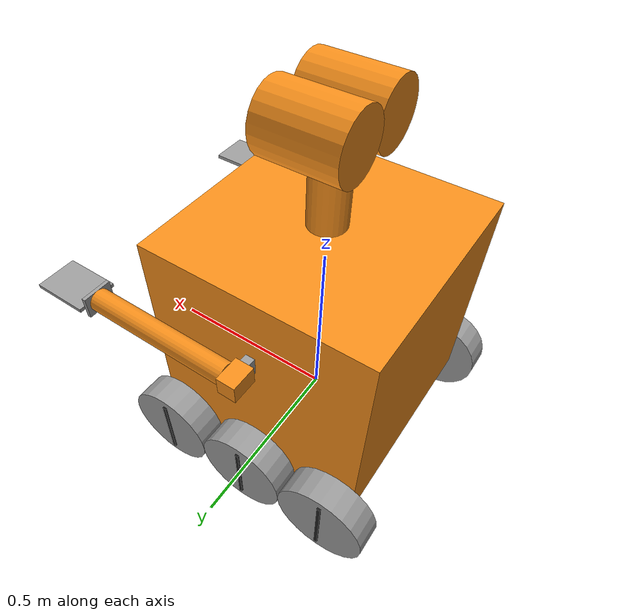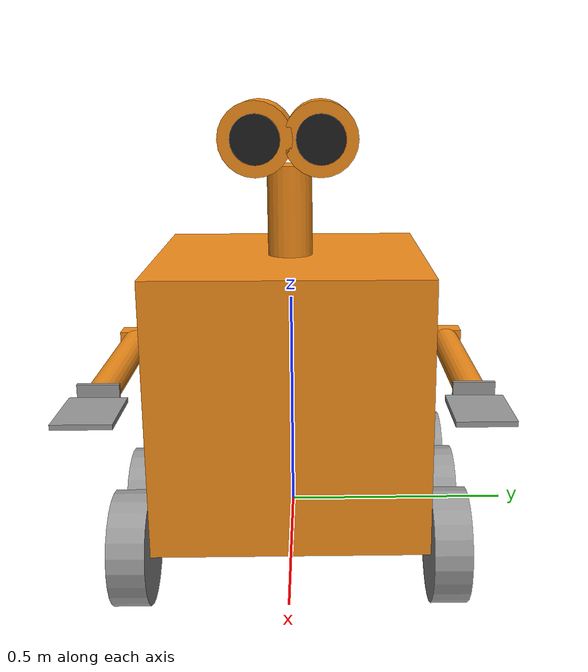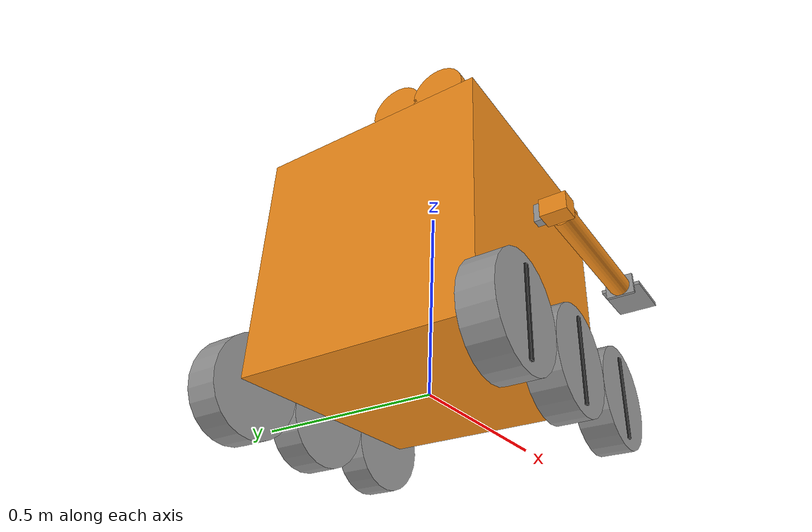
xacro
<?xml version="1.0" encoding="utf-8"?>
<robot name="my_bot" xmlns:xacro="http://www.ros.org/wiki/xacro">
    <xacro:include filename="$(find mybot_description)/urdf/materials.xacro" />
    <xacro:include filename="$(find mybot_description)/urdf/my_bot.gazebo" />
    <xacro:include filename="$(find mybot_description)/urdf/wheel_macro.xacro" />
    <xacro:include filename="$(find mybot_description)/urdf/hand_macro.xacro" />
    <xacro:include filename="$(find mybot_description)/urdf/eye_macro.xacro" />
    <xacro:include filename="$(find mybot_description)/urdf/transmission.xacro" />

    <xacro:property name="base_side" value="0.6"/>
    <xacro:property name="arm_pos" value="${base_side*2/3}"/>

    <xacro:property name="wheel_rad" value="0.125"/>
    <xacro:property name="wheel_len" value="0.08"/>

    <xacro:property name="shoulder_l" value="0.025"/>
    <xacro:property name="shoulder_w" value="0.02"/>
    <xacro:property name="shoulder_h" value="0.05"/>

    <xacro:property name="shoulder_forward_l" value="0.05"/>
    <xacro:property name="shoulder_forward_w" value="0.07"/>
    <xacro:property name="shoulder_forward_h" value="0.05"/>

    <xacro:property name="upper_arm_rad" value="0.03"/>
    <xacro:property name="upper_arm_len" value="0.4"/>

    <xacro:property name="arm_center_l" value="0.06"/>
    <xacro:property name="arm_center_w" value="0.08"/>
    <xacro:property name="arm_center_h" value="0.01"/>

    <xacro:property name="hand_l" value="0.11"/>
    <xacro:property name="hand_w" value="0.01"/>
    <xacro:property name="hand_h" value="0.15"/>

    <xacro:property name="ocular_rad" value="0.08"/>
    <xacro:property name="ocular_len" value="0.2"/>

    <xacro:property name="neck_rad" value="0.05"/>
    <xacro:property name="neck_len" value="0.2"/>

    <!-- * * * Link Definitions * * * -->

    <link name="base_link">
        <visual>
            <origin xyz="0 0 ${base_side/2}" rpy="0 0 0"/>
            <geometry>
                <box size="${base_side} ${base_side} ${base_side}"/>
            </geometry>
        </visual>
        <collision>
            <geometry>
                <box size="${base_side} ${base_side} ${base_side}"/>
            </geometry>
        </collision>
        <inertial>
            <mass value="2"/>
            <inertia ixx="1" ixy="0.0" ixz="0.0" iyy="1" iyz="0.0" izz="1"/>
        </inertial>
    </link>

    <xacro:link_wheel name="wheel_1_left" wheel_rad="${wheel_rad}" wheel_len="${wheel_len}" />
    <xacro:link_wheel_line name="wheel_1_left_line" wheel_rad="${wheel_rad}" />

    <xacro:link_wheel name="wheel_2_left" wheel_rad="${wheel_rad}" wheel_len="${wheel_len}" />
    <xacro:link_wheel_line name="wheel_2_left_line" wheel_rad="${wheel_rad}" />

    <xacro:link_wheel name="wheel_3_left" wheel_rad="${wheel_rad}" wheel_len="${wheel_len}" />
    <xacro:link_wheel_line name="wheel_3_left_line" wheel_rad="${wheel_rad}" />

    <xacro:link_wheel name="wheel_1_right" wheel_rad="${wheel_rad}" wheel_len="${wheel_len}" />
    <xacro:link_wheel_line name="wheel_1_right_line" wheel_rad="${wheel_rad}" />

    <xacro:link_wheel name="wheel_2_right" wheel_rad="${wheel_rad}" wheel_len="${wheel_len}" />
    <xacro:link_wheel_line name="wheel_2_right_line" wheel_rad="${wheel_rad}" />

    <xacro:link_wheel name="wheel_3_right" wheel_rad="${wheel_rad}" wheel_len="${wheel_len}" />
    <xacro:link_wheel_line name="wheel_3_right_line" wheel_rad="${wheel_rad}" />

    <xacro:link_shoulder name="left_shoulder_link" shoulder_l="${shoulder_l}" shoulder_w="${shoulder_w}" shoulder_h="${shoulder_h}" />
    <xacro:link_shoulder_forward name="left_shoulder_forward_link" shoulder_forward_l="${shoulder_forward_l}" shoulder_forward_w="${shoulder_forward_w}" shoulder_forward_h="${shoulder_forward_h}" />
    <xacro:link_upper_arm name="left_upper_arm_link" upper_arm_rad="${upper_arm_rad}" upper_arm_len="${upper_arm_len}" />
    <xacro:link_arm_center name="left_center_link" arm_center_l="${arm_center_l}" arm_center_w="${arm_center_w}" arm_center_h="${arm_center_h}" />
    <xacro:link_hand name="left_hand_link" hand_l="${hand_l}" hand_w="${hand_w}" hand_h="${hand_h}" />

    <xacro:link_shoulder name="right_shoulder_link" shoulder_l="${shoulder_l}" shoulder_w="${shoulder_w}" shoulder_h="${shoulder_h}" />
    <xacro:link_shoulder_forward name="right_shoulder_forward_link" shoulder_forward_l="${shoulder_forward_l}" shoulder_forward_w="${shoulder_forward_w}" shoulder_forward_h="${shoulder_forward_h}" />
    <xacro:link_upper_arm name="right_upper_arm_link" upper_arm_rad="${upper_arm_rad}" upper_arm_len="${upper_arm_len}" />
    <xacro:link_arm_center name="right_center_link" arm_center_l="${arm_center_l}" arm_center_w="${arm_center_w}" arm_center_h="${arm_center_h}" />
    <xacro:link_hand name="right_hand_link" hand_l="${hand_l}" hand_w="${hand_w}" hand_h="${hand_h}" />

    <link name="neck_link">
        <visual>
            <origin xyz="0 0 0" rpy="0 0 0"/>
            <geometry>
                <cylinder radius="${neck_rad}" length="${neck_len}"/>
            </geometry>
        </visual>
        <collision>
            <geometry>
                <cylinder radius="${neck_rad}" length="${neck_len}"/>
            </geometry>
        </collision>
        <inertial>
            <mass value="0.2"/>
            <inertia ixx="1" ixy="0.0" ixz="0.0" iyy="1" iyz="0.0" izz="1"/>
        </inertial>
    </link>

    <xacro:link_ocular name="left_ocular_link" ocular_rad="${ocular_rad}" ocular_len="${ocular_len}" />
    <xacro:link_eye name="left_eye_link" ocular_rad="${ocular_rad}" />

    <xacro:link_ocular name="right_ocular_link" ocular_rad="${ocular_rad}" ocular_len="${ocular_len}" />
    <xacro:link_eye name="right_eye_link" ocular_rad="${ocular_rad}" />

    <!-- * * * Joint Definitions * * * -->

    <xacro:joint_wheel name="wheel_1_left_joint" child="wheel_1_left" origin_xyz="${wheel_rad*2} ${base_side/2 + wheel_len/2} 0" />
    <xacro:joint_wheel_line name="wheel_1_left_line_joint" parent="wheel_1_left" child="wheel_1_left_line" origin_xyz="0 ${wheel_len/2} 0" />

    <xacro:joint_wheel name="wheel_2_left_joint" child="wheel_2_left" origin_xyz="0 ${base_side/2 + wheel_len/2} 0" />
    <xacro:joint_wheel_line name="wheel_2_left_line_joint" parent="wheel_2_left" child="wheel_2_left_line" origin_xyz="0 ${wheel_len/2} 0" />

    <xacro:joint_wheel name="wheel_3_left_joint" child="wheel_3_left" origin_xyz="-${wheel_rad*2} ${base_side/2 + wheel_len/2} 0" />
    <xacro:joint_wheel_line name="wheel_3_left_line_joint" parent="wheel_3_left" child="wheel_3_left_line" origin_xyz="0 ${wheel_len/2} 0" />

    <xacro:joint_wheel name="wheel_1_right_joint" child="wheel_1_right" origin_xyz="${wheel_rad*2} -${base_side/2 + wheel_len/2} 0" />
    <xacro:joint_wheel_line name="wheel_1_right_line_joint" parent="wheel_1_right" child="wheel_1_right_line" origin_xyz="0 -${wheel_len/2} 0" />

    <xacro:joint_wheel name="wheel_2_right_joint" child="wheel_2_right" origin_xyz="0 -${base_side/2 + wheel_len/2} 0" />
    <xacro:joint_wheel_line name="wheel_2_right_line_joint" parent="wheel_2_right" child="wheel_2_right_line" origin_xyz="0 -${wheel_len/2} 0" />

    <xacro:joint_wheel name="wheel_3_right_joint" child="wheel_3_right" origin_xyz="-${wheel_rad*2} -${base_side/2 + wheel_len/2} 0" />
    <xacro:joint_wheel_line name="wheel_3_right_line_joint" parent="wheel_3_right" child="wheel_3_right_line" origin_xyz="0 -${wheel_len/2} 0" />

    <xacro:joint_shoulder name="left_shoulder_joint" child="left_shoulder_link" origin_xyz="0 ${base_side/2 + shoulder_w/2} ${arm_pos}" />
    <xacro:joint_shoulder_forward name="left_shoulder_forward_joint" parent="left_shoulder_link" child="left_shoulder_forward_link" origin_xyz="0 ${shoulder_w/2 + shoulder_forward_w/2} 0" />
    <xacro:joint_upper_arm name="left_upper_arm_joint" parent="left_shoulder_forward_link" child="left_upper_arm_link" origin_xyz="${shoulder_forward_h/2 + upper_arm_len/2} 0 0" />
    <xacro:joint_arm_center name="left_center_joint" parent="left_upper_arm_link" child="left_center_link" origin_xyz="0 0 ${arm_center_h/2 + upper_arm_len/2}" />
    <xacro:joint_hand name="left_hand_joint" parent="left_center_link" child="left_hand_link" origin_xyz="0 0 ${arm_center_h/2 + hand_h/2}" />

    <xacro:joint_shoulder name="right_shoulder_joint" child="right_shoulder_link" origin_xyz="0 -${base_side/2 + shoulder_w/2} ${arm_pos}" />
    <xacro:joint_shoulder_forward name="right_shoulder_forward_joint" parent="right_shoulder_link" child="right_shoulder_forward_link" origin_xyz="0 -${shoulder_w/2 + shoulder_forward_w/2} 0" />
    <xacro:joint_upper_arm name="right_upper_arm_joint" parent="right_shoulder_forward_link" child="right_upper_arm_link" origin_xyz="${shoulder_forward_h/2 + upper_arm_len/2} 0 0" />
    <xacro:joint_arm_center name="right_center_joint" parent="right_upper_arm_link" child="right_center_link" origin_xyz="0 0 ${arm_center_h/2 + upper_arm_len/2}" />
    <xacro:joint_hand name="right_hand_joint" parent="right_center_link" child="right_hand_link" origin_xyz="0 0 ${arm_center_h/2 + hand_h/2}" />

     <joint name="neck_joint" type="revolute">
        <parent link="base_link"/>
        <child link="neck_link"/>
        <origin xyz="0 0 ${base_side + neck_len/2}" rpy="0 0 0"/>
        <limit lower="-1.57" upper="1.57" effort="10" velocity="3"/>
        <joint_properties damping="1.0" friction="1.0" />
        <axis xyz="0 0 1"/>
    </joint>

    <xacro:joint_ocular name="left_ocular_joint" child="left_ocular_link" origin_xyz="0 ${ocular_rad*7/8} ${neck_len - ocular_rad/2}" />
    <xacro:joint_eye name="left_eye_joint" parent="left_ocular_link" child="left_eye_link" origin_xyz="${neck_len/2} 0 0" />

    <xacro:joint_ocular name="right_ocular_joint" child="right_ocular_link" origin_xyz="0 -${ocular_rad*7/8} ${neck_len - ocular_rad/2}" />
    <xacro:joint_eye name="right_eye_joint" parent="right_ocular_link" child="right_eye_link" origin_xyz="${neck_len/2} 0 0" />

    <!-- * * * Transmission * * * -->

    <joint_transmission_macro joint_name="wheel_1_left_joint"/>
    <joint_transmission_macro joint_name="wheel_2_left_joint"/>
    <joint_transmission_macro joint_name="wheel_3_left_joint"/>

    <joint_transmission_macro joint_name="wheel_1_right_joint"/>
    <joint_transmission_macro joint_name="wheel_2_right_joint"/>
    <joint_transmission_macro joint_name="wheel_3_right_joint"/>

    <joint_transmission_macro joint_name="left_shoulder_forward_joint"/>
    <joint_transmission_macro joint_name="left_center_joint"/>

    <joint_transmission_macro joint_name="right_shoulder_forward_joint"/>
    <joint_transmission_macro joint_name="right_center_joint"/>

    <joint_transmission_macro joint_name="neck_joint"/>

    <!--  Robot navigation with keyboard  -->
    <gazebo>
        <plugin filename="libgazebo_ros_diff_drive.so" name="differential_drive_controller">
            <alwaysOn>true</alwaysOn>
            <updateRate>20</updateRate>
            <leftJoint>wheel_2_left_joint</leftJoint>
            <rightJoint>wheel_2_right_joint</rightJoint>
            <wheelSeparation>${base_side}</wheelSeparation>
            <wheelDiameter>${wheel_rad*2}</wheelDiameter>
            <torque>2</torque>
            <commandTopic>cmd_vel</commandTopic>
            <odometryTopic>odom</odometryTopic>
            <odometryFrame>odom</odometryFrame>
            <robotBaseFrame>base_link</robotBaseFrame>
        </plugin>
    </gazebo>
</robot>

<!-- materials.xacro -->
<robot>
    <material name="Orange">
        <color rgba="1.0 0.54 0.22 1.0" />
    </material>
    <material name="Black">
        <color rgba="0.0 0.0 0.0 1.0"/>
    </material>
    <material name="Gray">
        <color rgba="0.25 0.25 0.25 1.0"/>
    </material>
</robot>

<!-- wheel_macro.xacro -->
<robot xmlns:xacro="http://www.ros.org/wiki/xacro">

    <xacro:macro name="link_wheel" params="name wheel_rad wheel_len">
        <link name="${name}">
            <visual>
                <origin xyz="0 0 0" rpy="1.57 0 0"/>
                <geometry>
                    <cylinder radius="${wheel_rad}" length="${wheel_len}"/>
                </geometry>
            </visual>
            <collision>
                <geometry>
                    <cylinder radius="${wheel_rad}" length="${wheel_len}"/>
                </geometry>
            </collision>
            <inertial>
                <mass value="0.7"/>
                <inertia ixx="1" ixy="0.0" ixz="0.0" iyy="1" iyz="0.0" izz="1"/>
            </inertial>
        </link>
    </xacro:macro>

    <xacro:macro name="link_wheel_line" params="name wheel_rad">
        <link name="${name}">
            <visual>
                <origin xyz="0 0 0" rpy="0 0 0"/>
                <geometry>
                    <box size="0.01 0.01 ${wheel_rad*2 - 0.05}"/>
                </geometry>
            </visual>
            <collision>
                <geometry>
                    <box size="0.01 0.01 ${wheel_rad*2 - 0.05}"/>
                </geometry>
            </collision>
            <inertial>
                <mass value="0.001"/>
                <inertia ixx="1" ixy="0.0" ixz="0.0" iyy="1" iyz="0.0" izz="1"/>
            </inertial>
        </link>
    </xacro:macro>

    <xacro:macro name="joint_wheel" params="name child origin_xyz">
        <joint name="${name}" type="continuous">
            <parent link="base_link"/>
            <child link="${child}"/>
            <origin rpy="0 0 0" xyz="${origin_xyz}"/>
            <axis xyz="0 1 0"/>
            <limit effort="10000" velocity="1000"/>
            <joint_properties damping="1.0" friction="1.0" />
        </joint>
    </xacro:macro>

    <xacro:macro name="joint_wheel_line" params="name parent child origin_xyz">
        <joint name="${name}" type="fixed">
            <parent link="${parent}"/>
            <child link="${child}"/>
            <origin rpy="0 0 0" xyz="${origin_xyz}"/>
        </joint>
    </xacro:macro>

</robot>

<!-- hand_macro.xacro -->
<robot xmlns:xacro="http://www.ros.org/wiki/xacro">

    <xacro:macro name="link_shoulder" params="name shoulder_l shoulder_w shoulder_h">
        <link name="${name}">
            <visual>
                <origin xyz="0 0 0" rpy="0 0 0"/>
                <geometry>
                    <box size="${shoulder_l} ${shoulder_w} ${shoulder_h}"/>
                </geometry>
           </visual>
            <collision>
                <geometry>
                    <box size="${shoulder_l} ${shoulder_w} ${shoulder_h}"/>
                </geometry>
            </collision>
            <inertial>
                <mass value="0.2"/>
                <inertia ixx="1" ixy="0.0" ixz="0.0" iyy="1" iyz="0.0" izz="1"/>
            </inertial>
        </link>
    </xacro:macro>

    <xacro:macro name="link_shoulder_forward" params="name shoulder_forward_l shoulder_forward_w shoulder_forward_h">
        <link name="${name}">
            <visual>
                <origin xyz="0 0 0" rpy="0 0 0"/>
                <geometry>
                    <box size="${shoulder_forward_l} ${shoulder_forward_w} ${shoulder_forward_h}"/>
                </geometry>
           </visual>
            <collision>
                <geometry>
                    <box size="${shoulder_forward_l} ${shoulder_forward_w} ${shoulder_forward_h}"/>
                </geometry>
            </collision>
            <inertial>
                <mass value="0.4"/>
                <inertia ixx="1" ixy="0.0" ixz="0.0" iyy="1" iyz="0.0" izz="1"/>
            </inertial>
        </link>
    </xacro:macro>

    <xacro:macro name="link_upper_arm" params="name upper_arm_rad upper_arm_len">
        <link name="${name}">
            <visual>
                <origin xyz="0 0 0" rpy="0 0 0"/>
                <geometry>
                    <cylinder radius="${upper_arm_rad}" length="${upper_arm_len}"/>
                </geometry>
           </visual>
            <collision>
                <geometry>
                    <cylinder radius="${upper_arm_rad}" length="${upper_arm_len}"/>
                </geometry>
            </collision>
            <inertial>
                <mass value="1"/>
                <inertia ixx="1" ixy="0.0" ixz="0.0" iyy="1" iyz="0.0" izz="1"/>
            </inertial>
        </link>
    </xacro:macro>

    <xacro:macro name="link_arm_center" params="name arm_center_l arm_center_w arm_center_h">
        <link name="${name}">
            <visual>
                <origin xyz="0 0 0" rpy="0 0 1.57"/>
                <geometry>
                    <box size="${arm_center_l} ${arm_center_w} ${arm_center_h}"/>
                </geometry>
           </visual>
            <collision>
                <geometry>
                    <box size="${arm_center_l} ${arm_center_w} ${arm_center_h}"/>
                </geometry>
            </collision>
            <inertial>
                <mass value="0.1"/>
                <inertia ixx="1" ixy="0.0" ixz="0.0" iyy="1" iyz="0.0" izz="1"/>
            </inertial>
        </link>
    </xacro:macro>

    <xacro:macro name="link_hand" params="name hand_l hand_w hand_h">
        <link name="${name}">
            <visual>
                <origin xyz="0 0 0" rpy="0 0 0"/>
                <geometry>
                    <box size="${hand_l} ${hand_w} ${hand_h}"/>
                </geometry>
           </visual>
            <collision>
                <geometry>
                    <box size="${hand_l} ${hand_w} ${hand_h}"/>
                </geometry>
            </collision>
            <inertial>
                <mass value="0.3"/>
                <inertia ixx="1" ixy="0.0" ixz="0.0" iyy="1" iyz="0.0" izz="1"/>
            </inertial>
        </link>
    </xacro:macro>

    <xacro:macro name="joint_shoulder" params="name child origin_xyz">
        <joint name="${name}" type="fixed">
            <parent link="base_link"/>
            <child link="${child}"/>
            <origin rpy="0 0 0" xyz="${origin_xyz}"/>
        </joint>
    </xacro:macro>

    <xacro:macro name="joint_shoulder_forward" params="name parent child origin_xyz">
        <joint name="${name}" type="revolute">
            <parent link="${parent}"/>
            <child link="${child}"/>
            <origin rpy="0 0 0" xyz="${origin_xyz}"/>
            <limit lower="-1.57" upper="1.57" effort="10" velocity="3"/>
            <joint_properties damping="72" friction="50" />
            <axis xyz="0 1 0"/>
        </joint>
    </xacro:macro>

    <xacro:macro name="joint_upper_arm" params="name parent child origin_xyz">
        <joint name="${name}" type="fixed">
            <parent link="${parent}"/>
            <child link="${child}"/>
            <origin rpy="0 1.57 0" xyz="${origin_xyz}"/>
        </joint>
    </xacro:macro>

    <xacro:macro name="joint_arm_center" params="name parent child origin_xyz">
        <joint name="${name}" type="revolute">
            <parent link="${parent}"/>
            <child link="${child}"/>
            <origin rpy="0 0 1.57" xyz="${origin_xyz}"/>
            <limit lower="-1.57" upper="1.57" effort="10" velocity="3"/>
            <joint_properties damping="72" friction="50" />
            <axis xyz="0 0 1"/>
        </joint>
    </xacro:macro>

    <xacro:macro name="joint_hand" params="name parent child origin_xyz">
        <joint name="${name}" type="fixed">
            <parent link="${parent}"/>
            <child link="${child}"/>
            <origin rpy="0 0 0" xyz="${origin_xyz}"/>
        </joint>
    </xacro:macro>

</robot>

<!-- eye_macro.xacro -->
<robot xmlns:xacro="http://www.ros.org/wiki/xacro">

    <xacro:macro name="link_ocular" params="name ocular_rad ocular_len">
        <link name="${name}">
            <visual>
                <origin xyz="0 0 0" rpy="0 1.57 0"/>
                <geometry>
                    <cylinder radius="${ocular_rad}" length="${ocular_len}"/>
                </geometry>
            </visual>
            <collision>
                <geometry>
                    <cylinder radius="${ocular_rad}" length="${ocular_len}"/>
                </geometry>
            </collision>
            <inertial>
                <mass value="0.1"/>
                <inertia ixx="1" ixy="0.0" ixz="0.0" iyy="1" iyz="0.0" izz="1"/>
            </inertial>
        </link>
    </xacro:macro>

    <xacro:macro name="link_eye" params="name ocular_rad">
        <link name="${name}">
            <visual>
                <origin xyz="0 0 0" rpy="0 1.57 0"/>
                <geometry>
                    <cylinder radius="${ocular_rad*2/3}" length="0.01"/>
                </geometry>
            </visual>
            <collision>
                <geometry>
                    <cylinder radius="${ocular_rad*2/3}" length="0.01"/>
                </geometry>
            </collision>
            <inertial>
                <mass value="0.001"/>
                <inertia ixx="1" ixy="0.0" ixz="0.0" iyy="1" iyz="0.0" izz="1"/>
            </inertial>
        </link>
    </xacro:macro>

    <xacro:macro name="joint_ocular" params="name child origin_xyz">
        <joint name="${name}" type="fixed">
            <parent link="neck_link"/>
            <child link="${child}"/>
            <origin rpy="0 0 0" xyz="${origin_xyz}"/>
        </joint>
    </xacro:macro>

    <xacro:macro name="joint_eye" params="name parent child origin_xyz">
        <joint name="${name}" type="fixed">
            <parent link="${parent}"/>
            <child link="${child}"/>
            <origin rpy="0 0 0" xyz="${origin_xyz}"/>
        </joint>
    </xacro:macro>

</robot>
